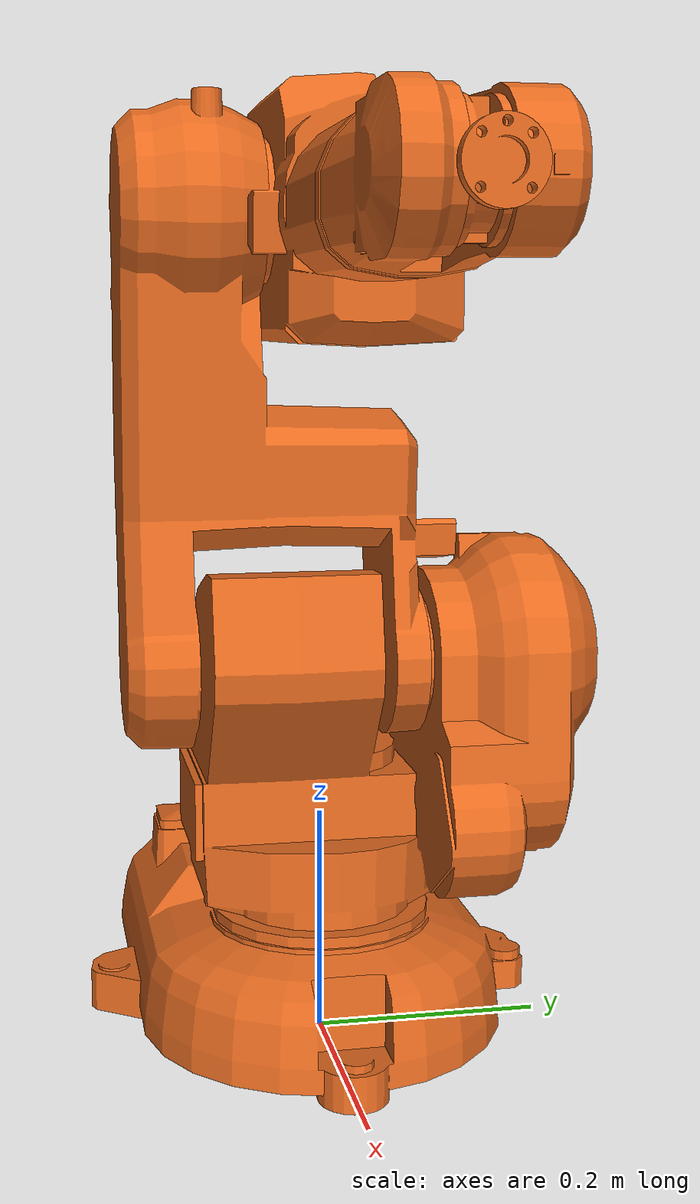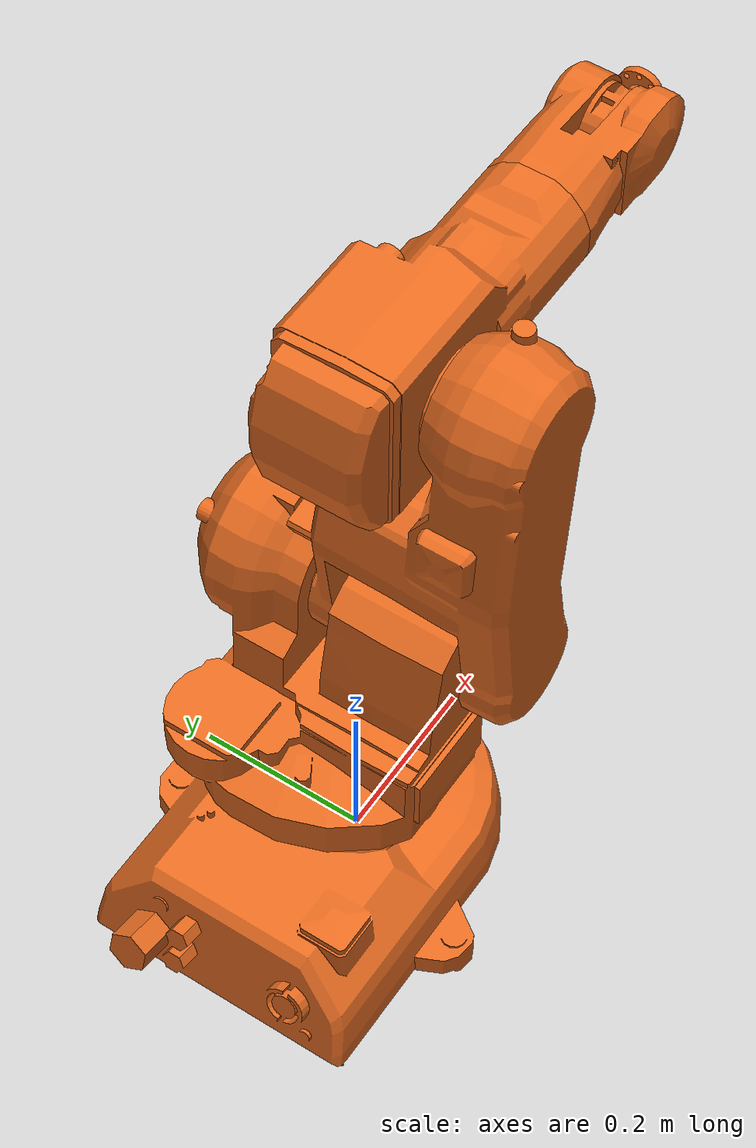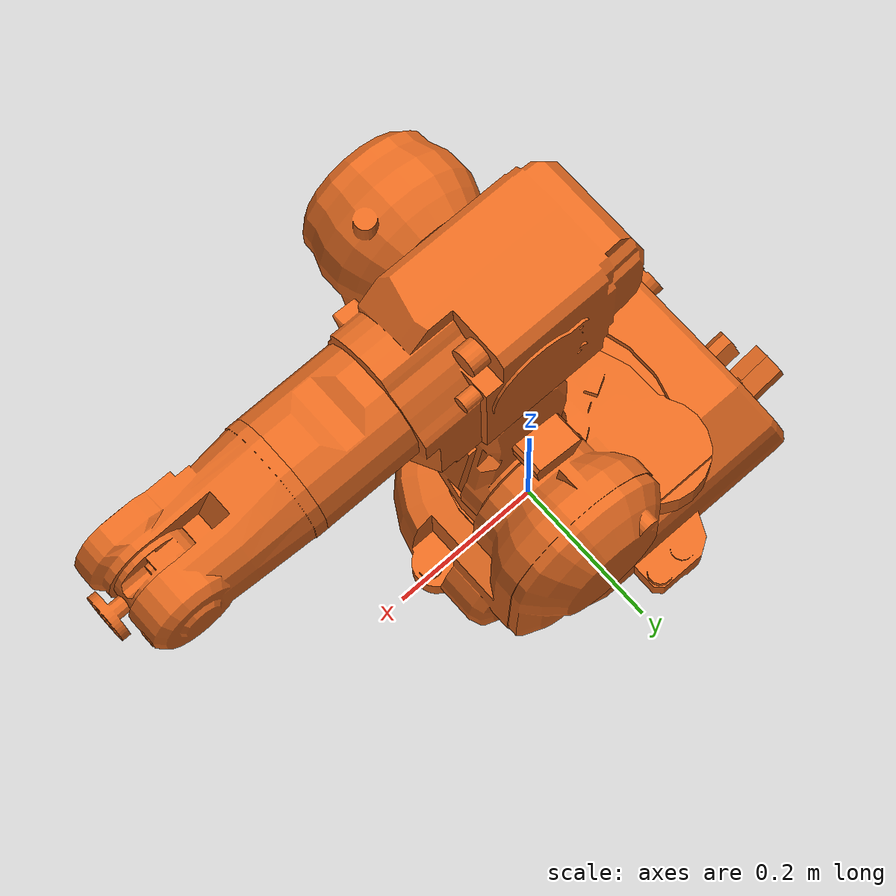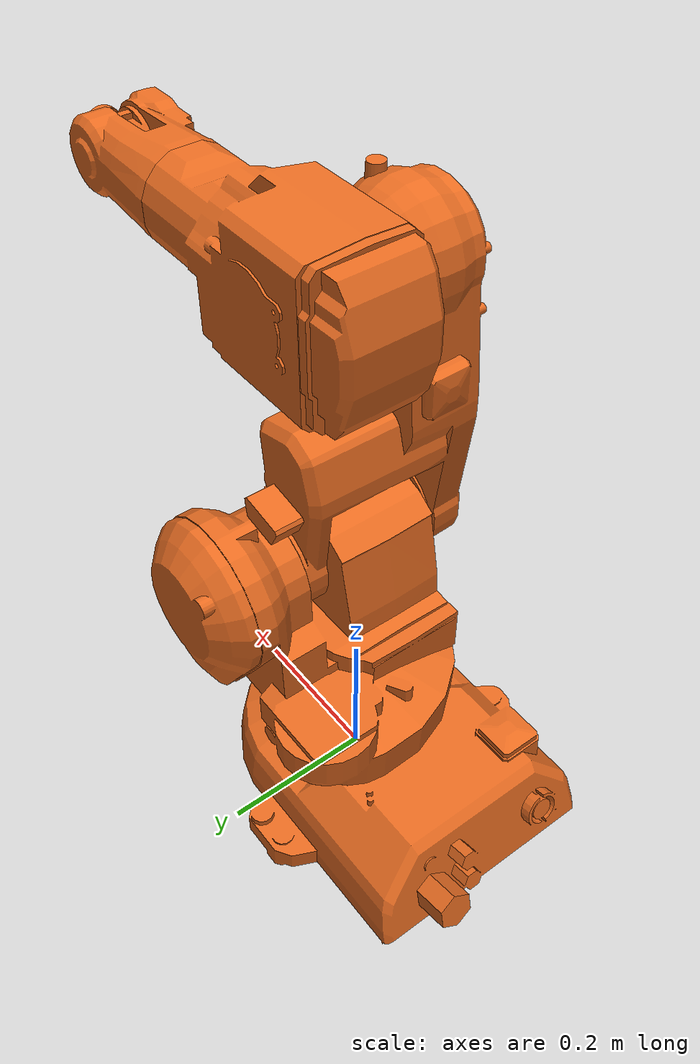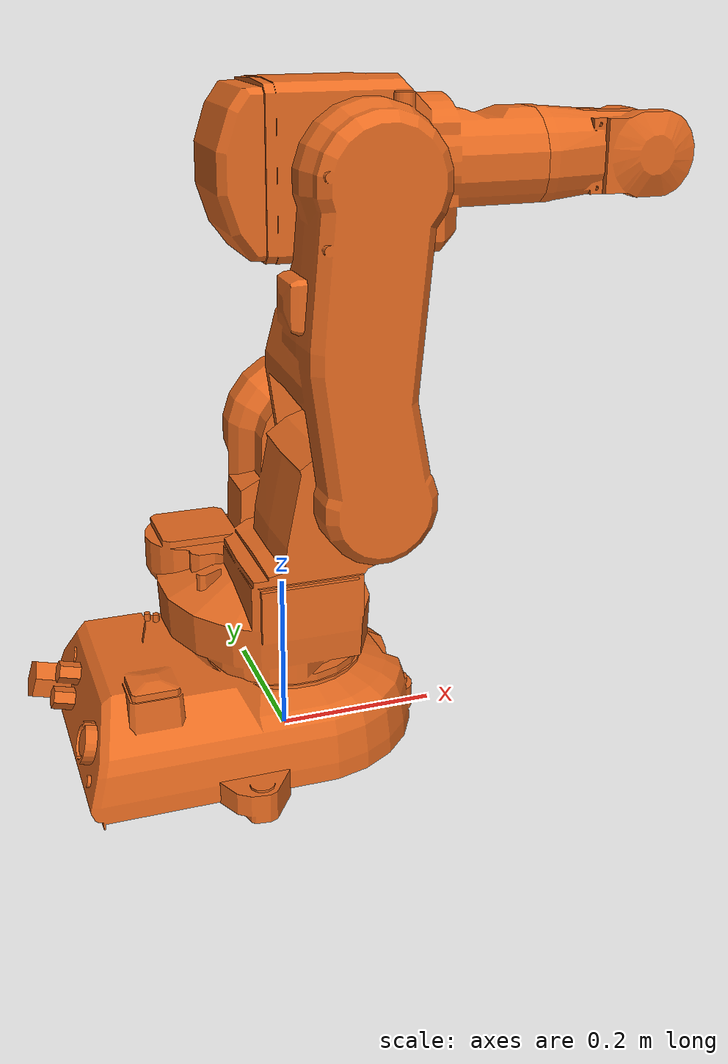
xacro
<?xml version="1.0"?>
<robot xmlns:xacro="http://ros.org/wiki/xacro"
  name="irb140" >

  <xacro:arg name="load_table" default="false"/>

  <xacro:include filename="$(find irb140)/robots/irb140.xacro" />

  <xacro:include filename="$(find irb140)/robots/irb140.transmission.xacro"/>

  <xacro:include filename="$(find irb140)/robots/table.urdf.xacro" />

  <xacro:include filename="$(find irb140)/robots/walls.urdf.xacro" />

  <xacro:property name="M_PI" value="3.1415926535897931" />

  <link name="world"/>

  <joint name="world_joint" type="fixed">
    <parent link="world"/>
    <xacro:if value="$(arg load_table)">
      <child link="table_link"/>
      <origin xyz="0 0 0.845"/>
    </xacro:if>
    <xacro:unless value="$(arg load_table)">
      <child link="fixation_link"/>
      <origin xyz="0 0 0.0"/>
    </xacro:unless>
  </joint>

  <!-- table -->
  <xacro:if value="$(arg load_table)">
    <xacro:table/>
    <xacro:walls/>
  </xacro:if>

  <link name="fixation_link"/>

  <!-- LWR -->
  <xacro:irb140 parent="fixation_link">
    <origin xyz="0.0 0 0.0" rpy="${-M_PI/2} 0 0" />
  </xacro:irb140>

  <gazebo>
    <plugin name="gazebo_ros_control" filename="libgazebo_ros_control.so">
      <robotSimType>gazebo_ros_control/DefaultRobotHWSim</robotSimType>
    </plugin>
  </gazebo>

  <xacro:irb140_transmission/>

</robot>

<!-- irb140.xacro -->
<robot name="irb140" xmlns:xacro="http://ros.org/wiki/xacro"
      xmlns:controller="http://playerstage.sourceforge.net/gazebo/xmlschema/#controller">

  <xacro:macro name="irb140" params="parent *origin ">
     <xacro:property name="M_PI" value="3.1415926535897931" />
  <joint name="joint_base_world" type="fixed">

     <xacro:insert_block name="origin" />
     <parent link="${parent}" />
     <child link="base_link" />
  </joint>

  <link
    name="base_link">
    <inertial>
      <origin
        xyz="-0.082039 0.00040203 0.059925"
        rpy="0 0 0" />
      <mass
        value="12.409" />
      <inertia
        ixx="0.1045"
        ixy="1.0052E-05"
        ixz="-0.0073428"
        iyy="0.16728"
        iyz="-0.00084301"
        izz="0.24649" />
    </inertial>
    <visual>
      <origin
        xyz="0 0 0"
        rpy="0 0 0" />
      <geometry>
        <mesh
          filename="package://irb140/meshes/base_link.STL" />
      </geometry>
      <material
        name="">
        <color
          rgba="0.8902 0.41176 0.12549 1" />
      </material>
    </visual>
    <collision>
      <origin
        xyz="0 0 0"
        rpy="0 0 0" />
      <geometry>
        <mesh
          filename="package://irb140/meshes/base_link.STL" />
      </geometry>
    </collision>
  </link>
  <link
    name="Link1">
    <inertial>
      <origin
        xyz="0.029077 0.044209 0.1717"
        rpy="0 0 0" />
      <mass
        value="14.1" />
      <inertia
        ixx="0.212"
        ixy="0.018126"
        ixz="0.039941"
        iyy="0.17535"
        iyz="0.023312"
        izz="0.1711" />
    </inertial>
    <visual>
      <origin
        xyz="0 0 0"
        rpy="0 0 0" />
      <geometry>
        <mesh
          filename="package://irb140/meshes/Link1.STL" />
      </geometry>
      <material
        name="">
        <color
          rgba="0.8902 0.41176 0.12549 1" />
      </material>
    </visual>
    <collision>
      <origin
        xyz="0 0 0"
        rpy="0 0 0" />
      <geometry>
        <mesh
          filename="package://irb140/meshes/Link1.STL" />
      </geometry>
    </collision>
  </link>
  <joint
    name="joint_1"
    type="revolute">
    <origin
      xyz="0 -0.0903 0"
      rpy="1.5708 0 0" />
    <parent
      link="base_link" />
    <child
      link="Link1" />
    <axis
      xyz="0 0 1" />
    <limit
      lower="${-M_PI/4}"
      upper="${M_PI/4}"
      effort="1000"
      velocity="200" />
    <!--calibration
      rising="0"
      falling="0" /-->
    <dynamics
      damping="0"
      friction="0" />
    <!--safety_controller
      soft_upper="${M_PI}"
      soft_lower="${-M_PI}"
      k_position="400"
      k_velocity="20" /-->
  </joint>
  <link
    name="Link2">
    <inertial>
      <origin
        xyz="-0.0097278 -0.092434 0.19829"
        rpy="0 0 0" />
      <mass
        value="7.5804" />
      <inertia
        ixx="0.15574"
        ixy="-0.0005161"
        ixz="0.0018292"
        iyy="0.1315"
        iyz="-0.017977"
        izz="0.044937" />
    </inertial>
    <visual>
      <origin
        xyz="0 0 0"
        rpy="0 0 0" />
      <geometry>
        <mesh
          filename="package://irb140/meshes/Link2.STL" />
      </geometry>
      <material
        name="">
        <color
          rgba="0.8902 0.41176 0.12549 1" />
      </material>
    </visual>
    <collision>
      <origin
        xyz="0 0 0"
        rpy="0 0 0" />
      <geometry>
        <mesh
          filename="package://irb140/meshes/Link2.STL" />
      </geometry>
    </collision>
  </link>
  <joint
    name="joint_2"
    type="revolute">
    <origin
      xyz="0.07 0 0.263"
      rpy="0 0 0" />
    <parent
      link="Link1" />
    <child
      link="Link2" />
    <axis
      xyz="0 1 0" />
    <limit
      lower="${-M_PI/4}"
      upper="${M_PI/2}"
      effort="1000"
      velocity="200" />
    <!--calibration
      rising="0"
      falling="0" /-->
    <dynamics
      damping="0"
      friction="0" />
    <!--safety_controller
      soft_upper="${M_PI}"
      soft_lower="${-M_PI}"
      k_position="400"
      k_velocity="20" /-->
  </joint>
  <link
    name="Link3">
    <inertial>
      <origin
        xyz="0.023168 0.0069313 -0.0055785"
        rpy="0 0 0" />
      <mass
        value="8.0495" />
      <inertia
        ixx="0.032211"
        ixy="-0.0031355"
        ixz="-0.001634"
        iyy="0.0978"
        iyz="-0.0003708"
        izz="0.089599" />
    </inertial>
    <visual>
      <origin
        xyz="0 0 0"
        rpy="0 0 0" />
      <geometry>
        <mesh
          filename="package://irb140/meshes/Link3.STL" />
      </geometry>
      <material
        name="">
        <color
          rgba="0.8902 0.41176 0.12549 1" />
      </material>
    </visual>
    <collision>
      <origin
        xyz="0 0 0"
        rpy="0 0 0" />
      <geometry>
        <mesh
          filename="package://irb140/meshes/Link3.STL" />
      </geometry>
    </collision>
  </link>
  <joint
    name="joint_3"
    type="revolute">
    <origin
      xyz="0 0 0.36"
      rpy="0 0 0" />
    <parent
      link="Link2" />
    <child
      link="Link3" />
    <axis
      xyz="0 1 0" />
    <limit
      lower="${-M_PI/4}"
      upper="${M_PI/4}"
      effort="1000"
      velocity="200" />
    <!--calibration
      rising="0"
      falling="0" /-->
    <dynamics
      damping="0"
      friction="0" />
    <!--safety_controller
      soft_upper="${M_PI}"
      soft_lower="${-M_PI}"
      k_position="400"
      k_velocity="20" /-->
  </joint>
  <link
    name="Link4">
    <inertial>
      <origin
        xyz="0.085328 -0.0010873 0.004944"
        rpy="0 0 0" />
      <mass
        value="1.6934" />
      <inertia
        ixx="0.0031836"
        ixy="-0.00022431"
        ixz="1.658E-05"
        iyy="0.006092"
        iyz="-2.9727E-06"
        izz="0.006995" />
    </inertial>
    <visual>
      <origin
        xyz="0 0 0"
        rpy="0 0 0" />
      <geometry>
        <mesh
          filename="package://irb140/meshes/Link4.STL" />
      </geometry>
      <material
        name="">
        <color
          rgba="0.8902 0.41176 0.12549 1" />
      </material>
    </visual>
    <collision>
      <origin
        xyz="0 0 0"
        rpy="0 0 0" />
      <geometry>
        <mesh
          filename="package://irb140/meshes/Link4.STL" />
      </geometry>
    </collision>
  </link>
  <joint
    name="joint_4"
    type="revolute">
    <origin
      xyz="0.2385 -0.0005 -0.0049857"
      rpy="0 0 0" />
    <parent
      link="Link3" />
    <child
      link="Link4" />
    <axis
      xyz="1 0 0" />
    <limit
      lower="${-M_PI}"
      upper="${M_PI}"
      effort="1000"
      velocity="200" />
    <!--calibration
      rising="0"
      falling="0" /-->
    <dynamics
      damping="0"
      friction="0" />
    <!--safety_controller
      soft_upper="${M_PI}"
      soft_lower="${-M_PI}"
      k_position="400"
      k_velocity="20" /-->
  </joint>
  <link
    name="Link5">
    <inertial>
      <origin
        xyz="-0.0013999 0.00049998 -0.00076618"
        rpy="0 0 0" />
      <mass
        value="0.1261" />
      <inertia
        ixx="6.5744E-05"
        ixy="-4.2742E-11"
        ixz="-1.6335E-06"
        iyy="0.0001092"
        iyz="1.1648E-09"
        izz="6.4718E-05" />
    </inertial>
    <visual>
      <origin
        xyz="0 0 0"
        rpy="0 0 0" />
      <geometry>
        <mesh
          filename="package://irb140/meshes/Link5.STL" />
      </geometry>
      <material
        name="">
        <color
          rgba="0.8902 0.41176 0.12549 1" />
      </material>
    </visual>
    <collision>
      <origin
        xyz="0 0 0"
        rpy="0 0 0" />
      <geometry>
        <mesh
          filename="package://irb140/meshes/Link5.STL" />
      </geometry>
    </collision>
  </link>
  <joint
    name="joint_5"
    type="revolute">
    <origin
      xyz="0.1415 0 0.0049857"
      rpy="2.6185E-05 0 0" />
    <parent
      link="Link4" />
    <child
      link="Link5" />
    <axis
      xyz="0 1 2.6185E-05" />
    <limit
      lower="${-M_PI/2}"
      upper="${M_PI/2}"
      effort="1000"
      velocity="200" />
    <!--calibration
      rising="0"
      falling="0" /-->
    <dynamics
      damping="0"
      friction="0" />
    <!--safety_controller
      soft_upper="${M_PI}"
      soft_lower="${-M_PI}"
      k_position="400"
      k_velocity="20" /-->
  </joint>
  <link
    name="Link6">
    <inertial>
      <origin
        xyz="0.020505 -7.343E-09 -0.00028042"
        rpy="0 0 0" />
      <mass
        value="0.018149" />
      <inertia
        ixx="4.9517E-06"
        ixy="-5.3234E-13"
        ixz="-2.033E-08"
        iyy="3.3735E-06"
        iyz="-2.7027E-12"
        izz="3.4768E-06" />
    </inertial>
    <visual>
      <origin
        xyz="0 0 0"
        rpy="0 0 0" />
      <geometry>
        <mesh
          filename="package://irb140/meshes/Link6.STL" />
      </geometry>
      <material
        name="">
        <color
          rgba="0.8902 0.41176 0.12549 1" />
      </material>
    </visual>
    <collision>
      <origin
        xyz="0 0 0"
        rpy="0 0 0" />
      <geometry>
        <mesh
          filename="package://irb140/meshes/Link6.STL" />
      </geometry>
    </collision>
  </link>
  <joint
    name="joint_6"
    type="revolute">
    <origin
      xyz="0.036 0.0005 0"
      rpy="-2.6185E-05 0 0" />
    <parent
      link="Link5" />
    <child
      link="Link6" />
    <axis
      xyz="1 0 0" />
    <limit
      lower="${-2*M_PI}"
      upper="${2*M_PI}"
      effort="1000"
      velocity="200" />
    <!--calibration
      rising="0"
      falling="0" /-->
    <dynamics
      damping="0"
      friction="0" />
    <!--safety_controller
      soft_upper="${M_PI}"
      soft_lower="${-M_PI}"
      k_position="400"
      k_velocity="20" /-->
  </joint>
</xacro:macro>
</robot>
